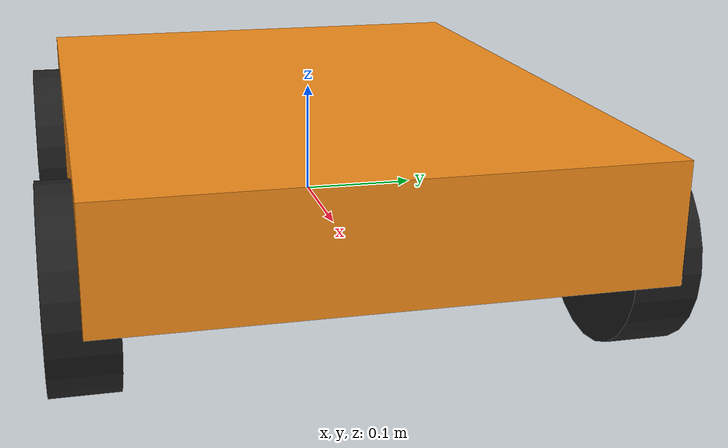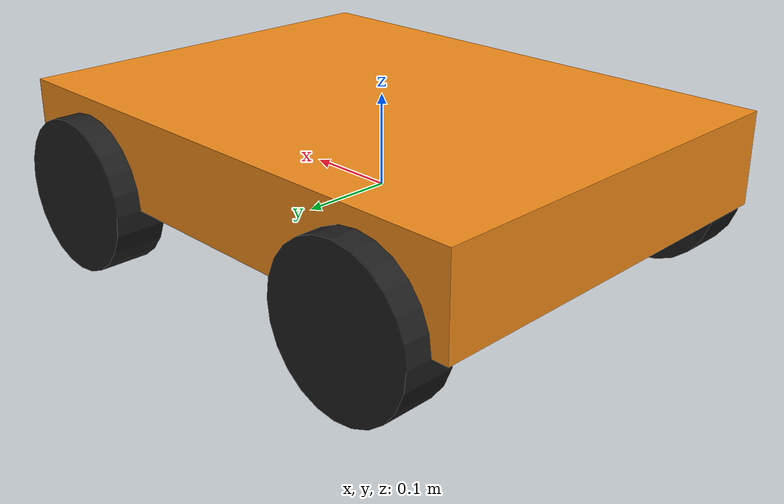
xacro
<?xml version="1.0"?>
<robot xmlns:xacro="http://www.ros.org/wiki/xacro" name="4wd_hoverboard">
  <xacro:arg name="prefix"       default=""/>
  <xacro:arg name="front_device" default="/dev/ttyUSB0"/>
  <xacro:arg name="rear_device"  default="/dev/ttyUSB1"/>
  <xacro:arg name="feedback_format" default="compact"/>
  <xacro:arg name="wheel_radius" default="0.0825"/>
  <xacro:arg name="max_velocity" default="1.0"/>
  <xacro:arg name="command_limit_rpm" default="50"/>

  <xacro:include filename="$(find hoverboard_driver)/urdf/diffbot_description.urdf.xacro"/>
  <xacro:include filename="$(find hoverboard_driver)/urdf/diffbot.materials.xacro"/>
  <xacro:include filename="$(find hoverboard_driver)/ros2_control/hoverboard_driver.ros2_control.xacro"/>

  <xacro:diffbot prefix="$(arg prefix)"/>

  <xacro:hoverboard_driver_ros2_control
    name="HoverboardDriver"
    prefix="$(arg prefix)"
    front_device="$(arg front_device)"
    rear_device="$(arg rear_device)"
    feedback_format="$(arg feedback_format)"
    wheel_radius="$(arg wheel_radius)"
    max_velocity="$(arg max_velocity)"
    command_limit_rpm="$(arg command_limit_rpm)"/>

</robot>

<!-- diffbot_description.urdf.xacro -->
<robot xmlns:xacro="http://www.ros.org/wiki/xacro">

  <xacro:macro name="diffbot" params="prefix">

    <!-- Robot dimensions -->
    <xacro:property name="PI"            value="3.1415926535897931"/>
    <xacro:property name="base_mass"     value="10.0"/>
    <xacro:property name="base_length"   value="0.60"/>   <!-- front-to-rear: 600mm -->
    <xacro:property name="base_width"    value="0.45"/>   <!-- left-to-right: 450mm -->
    <xacro:property name="base_height"   value="0.10"/>

    <!-- Wheel dimensions (hoverboard wheel) -->
    <xacro:property name="wheel_mass"    value="1.5"/>
    <xacro:property name="wheel_radius"  value="0.0825"/>  <!-- 82.5mm -->
    <xacro:property name="wheel_len"     value="0.055"/>   <!-- tyre width -->

    <!-- Wheel positions -->
    <!-- Axle offset from body center along X: wheelbase/2 = 400mm/2 = 200mm -->
    <xacro:property name="axle_offset_x" value="0.20"/>
    <!-- Lateral offset: wheel center at body edge -->
    <xacro:property name="axle_offset_y" value="${base_width / 2.0}"/>
    <!-- Wheel bottom touches ground when base_link is at wheel_radius height -->
    <xacro:property name="axle_offset_z" value="0.0"/>

    <!-- ==================== Base Link ==================== -->
    <link name="${prefix}base_link">
      <collision>
        <origin xyz="0 0 ${base_height/2}" rpy="0 0 0"/>
        <geometry>
          <box size="${base_length} ${base_width} ${base_height}"/>
        </geometry>
      </collision>
      <visual>
        <origin xyz="0 0 ${base_height/2}" rpy="0 0 0"/>
        <geometry>
          <box size="${base_length} ${base_width} ${base_height}"/>
        </geometry>
        <material name="orange"/>
      </visual>
      <inertial>
        <origin xyz="0 0 0" rpy="0 0 0"/>
        <mass value="${base_mass}"/>
        <inertia
          ixx="${base_mass / 12.0 * (base_width*base_width   + base_height*base_height)}" ixy="0" ixz="0"
          iyy="${base_mass / 12.0 * (base_length*base_length + base_height*base_height)}" iyz="0"
          izz="${base_mass / 12.0 * (base_length*base_length + base_width*base_width)}"/>
      </inertial>
    </link>

    <!-- ==================== Wheel macro ==================== -->
    <xacro:macro name="wheel" params="prefix side lr_reflect fb_reflect fb_label">
      <joint name="${prefix}${fb_label}_${side}_wheel_joint" type="continuous">
        <parent link="${prefix}base_link"/>
        <child  link="${prefix}${fb_label}_${side}_wheel"/>
        <!-- x: front(+) or rear(-); y: left(+) or right(-); z: axle height -->
        <origin xyz="${fb_reflect * axle_offset_x}
                     ${lr_reflect * axle_offset_y}
                     ${axle_offset_z}"
                rpy="0 0 0"/>
        <axis xyz="0 1 0"/>
        <dynamics damping="0.2"/>
      </joint>

      <link name="${prefix}${fb_label}_${side}_wheel">
        <collision>
          <origin xyz="0 0 0" rpy="${PI/2} 0 0"/>
          <geometry>
            <cylinder length="${wheel_len}" radius="${wheel_radius}"/>
          </geometry>
        </collision>
        <visual>
          <origin xyz="0 0 0" rpy="${PI/2} 0 0"/>
          <geometry>
            <cylinder length="${wheel_len}" radius="${wheel_radius}"/>
          </geometry>
          <material name="black"/>
        </visual>
        <inertial>
          <origin xyz="0 0 0" rpy="${PI/2} 0 0"/>
          <mass value="${wheel_mass}"/>
          <inertia
            ixx="${wheel_mass / 12.0 * (3*wheel_radius*wheel_radius + wheel_len*wheel_len)}" ixy="0" ixz="0"
            iyy="${wheel_mass / 12.0 * (3*wheel_radius*wheel_radius + wheel_len*wheel_len)}" iyz="0"
            izz="${wheel_mass / 2.0  *  wheel_radius*wheel_radius}"/>
        </inertial>
      </link>
    </xacro:macro>

    <!-- ==================== Four wheels ==================== -->
    <xacro:wheel prefix="${prefix}" side="left"  lr_reflect=" 1" fb_reflect=" 1" fb_label="front"/>
    <xacro:wheel prefix="${prefix}" side="right" lr_reflect="-1" fb_reflect=" 1" fb_label="front"/>
    <xacro:wheel prefix="${prefix}" side="left"  lr_reflect=" 1" fb_reflect="-1" fb_label="rear"/>
    <xacro:wheel prefix="${prefix}" side="right" lr_reflect="-1" fb_reflect="-1" fb_label="rear"/>

  </xacro:macro>

</robot>
